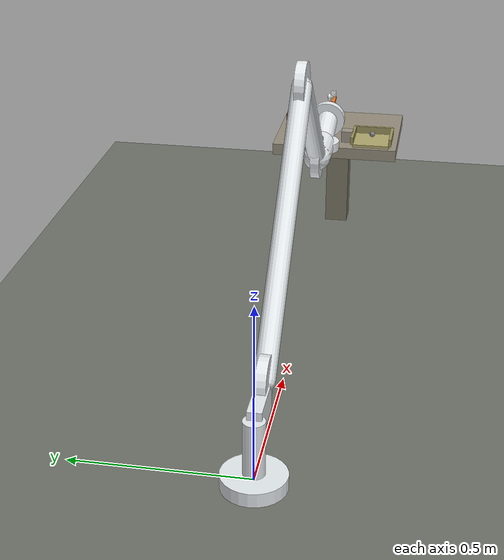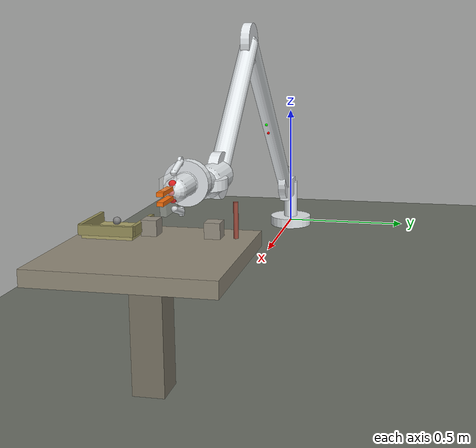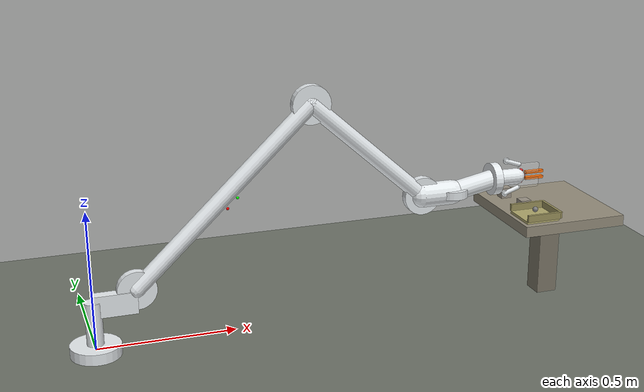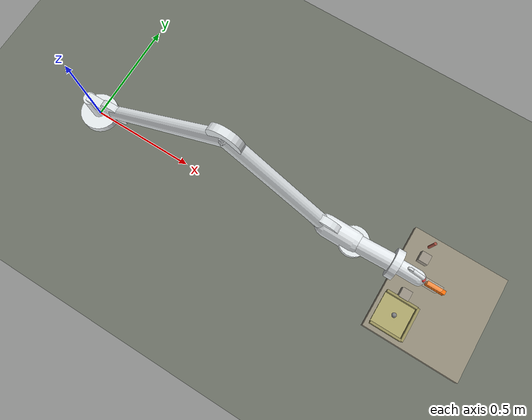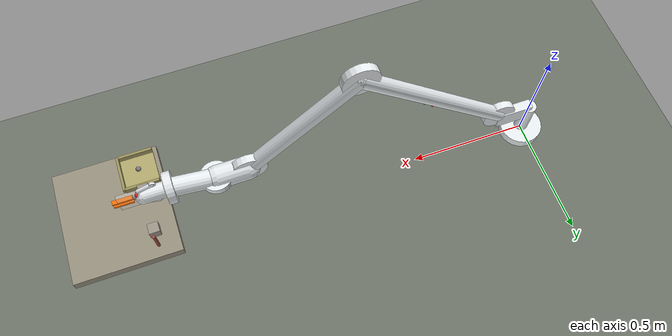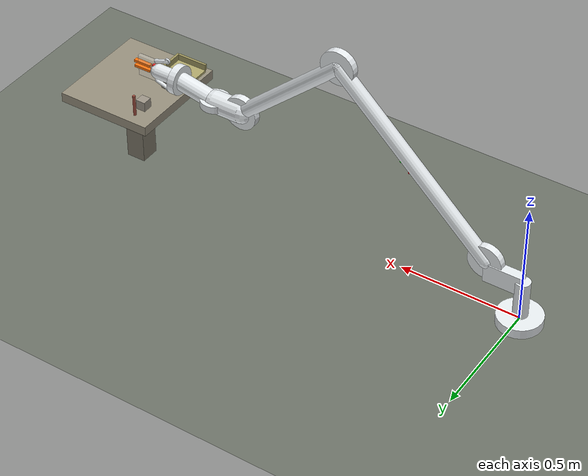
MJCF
<mujoco model="underwater_sampling_l3">
  <include file="_base.xml"/>

  <worldbody>
    <!-- A 岩：立柱旁边那块 -->
    <body name="object" pos="1.60 0.10 0.37">
      <freejoint name="object_joint"/>
      <geom name="object_geom" type="box" size="0.02 0.02 0.02" mass="0.1"
            solref="0.002 1" rgba="0.60 0.57 0.52 1" friction="0.7 0.02 0.001"/>
    </body>

    <!-- B 岩：空地上那块（干扰项） -->
    <body name="object2" pos="1.60 -0.06 0.37">
      <freejoint name="object2_joint"/>
      <geom name="object2_geom" type="box" size="0.02 0.02 0.02" mass="0.1"
            solref="0.002 1" rgba="0.60 0.57 0.52 1" friction="0.7 0.02 0.001"/>
    </body>

    <!-- 参照物立柱（静态，纯视觉+可碰撞；给语言指称一个锚点） -->
    <body name="marker_post" pos="1.60 0.155 0.35">
      <geom name="marker_post_geom" type="cylinder" size="0.006 0.045" pos="0 0 0.045"
            rgba="0.62 0.30 0.24 1" friction="0.7 0.02 0.001"/>
    </body>

    <!-- 托盘几何与 L1 一致（内净 12cm、三面壁 2.5cm、软底、近侧开口）：补上近侧壁 link6_mount 就会啃壁。 -->
    <body name="place_target" pos="1.60 -0.15 0.35">
      <geom name="tray_floor" type="box" size="0.065 0.065 0.005" pos="0 0 0.005"
            solref="0.02 1" rgba="0.68 0.65 0.42 1" friction="0.9 0.02 0.001"/>
      <geom name="tray_wall_xp" type="box" size="0.005 0.07 0.0125" pos="0.0675 0 0.0225"
            rgba="0.60 0.57 0.36 1" friction="0.9 0.02 0.001"/>
            rgba="0.60 0.57 0.36 1" friction="0.9 0.02 0.001"/>
      <geom name="tray_wall_yp" type="box" size="0.065 0.005 0.0125" pos="0 0.0675 0.0225"
            rgba="0.60 0.57 0.36 1" friction="0.9 0.02 0.001"/>
      <geom name="tray_wall_yn" type="box" size="0.065 0.005 0.0125" pos="0 -0.0675 0.0225"
            rgba="0.60 0.57 0.36 1" friction="0.9 0.02 0.001"/>
      <site name="place_target_site" pos="0 0 0.030" size="0.01"/>
    </body>
  </worldbody>

  <keyframe>
    <!-- arm8 + A 岩 7 + B 岩 7（freejoint 按声明顺序） -->
    <key name="home" qpos="0.0374 -0.5858 -1.4717 0.3109 -0.1223 -1.5642 0.22 0.22 1.60 0.10 0.37 1 0 0 0 1.60 -0.06 0.37 1 0 0 0"
         ctrl="0.0374 -0.5858 -1.4717 0.3109 -0.1223 -1.5642 0.22 0.22"/>
  </keyframe>
</mujoco>

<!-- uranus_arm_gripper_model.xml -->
<mujoco model="uranus_arm_gripper_model_a">
  <compiler angle="radian"/>

  <!-- Model A: complete kinematic/dynamic structure with STL meshes replaced
       by primitive geometry. Gripper simplified to a direct-drive 2-jaw design. -->
  <option timestep="0.001" solver="Newton" iterations="100" tolerance="1e-12"
          cone="elliptic" impratio="10">
    <flag gravity="enable"/>
  </option>

  <worldbody>
    <camera name="top_view" pos="0 0 0.8" xyaxes="0 -1 0  0 0 1" fovy="50"/>
    <body name="base_link" pos="0 0 0">
      <inertial pos="0.00022653 -8.6509e-12 0.017246" quat="1 0 0 0" mass="2.7072" diaginertia="0.0076487 0.0076027 0.014205"/>
      <geom name="base_link_primitive" type="cylinder" size="0.09 0.02" rgba="0.89804 0.91765 0.92941 1"/>

      <body name="link1" pos="0 0 0.021514">
        <inertial pos="0.045493 -0.00030184 0.10957" quat="0.509921 0.489886 0.489726 0.51006" mass="22" diaginertia="0.1916 0.161437 0.138963"/>
        <joint name="joint1" type="hinge" limited="true" range="-3.14 3.14" damping="3000" armature="1" frictionloss="50" pos="0 0 0" axis="0 0 1"/>
        <geom name="link1_hub" type="cylinder" pos="0 0 0.06545" size="0.03 0.09089" rgba="0.89804 0.91765 0.92941 1"/>
        <geom name="link1_beam" type="box" size="0.076525 0.02 0.04" pos="0.076525 0 0.14" rgba="0.89804 0.91765 0.92941 1"/>

        <body name="link2" pos="0.15305 0 0.18178" quat="0.70710678 0.70710678 0 0">
          <inertial pos="0.30213 0.30426 6.3402e-05" quat="0.647239 0.284761 -0.647233 0.284749" mass="24" diaginertia="1.403 1.38077 0.10333"/>
          <joint name="joint2" type="hinge" limited="true" range="-1.527 -0.108" ref="-0.812224" damping="2000" armature="1" frictionloss="80" pos="0 0 0" axis="0 0 1"/>
          <geom name="link2_hub" type="cylinder" size="0.07 0.015" rgba="0.89804 0.91765 0.92941 1"/>
          <geom name="link2_beam" type="capsule" fromto="0 0 0 0.63529 0.60209 0" size="0.03" rgba="0.89804 0.91765 0.92941 1"/>

          <body name="link3" pos="0.63529 0.60209 0">
            <inertial pos="0.24045 -0.15902 0.00044845" quat="0.283173 0.64737 -0.285062 0.647661" mass="13" diaginertia="0.29 0.280416 0.0395839"/>
            <joint name="joint3" type="hinge" limited="true" range="-2.857 -0.164" ref="-1.485888" damping="1500" armature="1" frictionloss="50" pos="0 0 0" axis="0 0 1"/>
            <geom name="link3_hub" type="cylinder" size="0.07 0.015" rgba="0.89804 0.91765 0.92941 1"/>
            <geom name="link3_beam" type="capsule" fromto="0 0 0 0.42294 -0.37646 -0.0022318" size="0.03" rgba="0.89804 0.91765 0.92941 1"/>

            <body name="link4" pos="0.42294 -0.37646 -0.0022318">
              <inertial pos="0.052755 0.00053808 0.00076395" quat="0.500656 0.499526 0.500109 0.499708" mass="9" diaginertia="0.0464 0.0441 0.0169"/>
              <joint name="joint4" type="hinge" ref="0.726678" damping="1500" armature="1" frictionloss="20" pos="0 0 0" axis="0 0 1" limited="true" range="-2.0 2.0"/>
              <geom name="link4_hub" type="cylinder" size="0.07 0.015" rgba="0.89804 0.91765 0.92941 1"/>
              <geom name="link4_beam" type="capsule" fromto="0 0 0 0.12065 -7.62e-05 0" size="0.045" rgba="0.89804 0.91765 0.92941 1"/>

              <body name="link5" pos="0.12065 -7.62e-05 0" quat="0.499998 0.5 0.5 -0.500002">
                <inertial pos="0.0007351 0.093393 0.00070242" quat="0.526825 0.464754 0.477704 0.527502" mass="5.2" diaginertia="0.020302 0.015217 0.013781"/>
                <joint type="hinge" limited="true" range="-1.5708 1.5708" damping="800" armature="1" frictionloss="15" name="joint5" pos="0 0 0" axis="0 0 -1"/>
                <geom name="link5_hub" type="cylinder" size="0.06 0.015" rgba="0.89804 0.91765 0.92941 1"/>
                <geom name="link5_beam" type="capsule" fromto="0 0 0 0 0.168 -0.033659" size="0.036" rgba="0.89804 0.91765 0.92941 1"/>

                <body name="link6" pos="0 0.168 -0.033659" quat="-2.59734e-06 -2.59735e-06 0.707108 0.707105">
                  <camera name="wrist_cam" pos="0 0.1 0.05" xyaxes="1 0 0 0 -1 0" fovy="60"/>
                  <inertial pos="-6.1362e-05 -1.137e-05 0.0050252" quat="0.499873 0.500366 -0.499617 0.500144" mass="1.8289" diaginertia="0.0022148 0.0019893 0.0014508"/>
                  <joint name="joint6" type="hinge" limited="true" range="-3.14 3.14" damping="300" armature="0.1" frictionloss="5" pos="0 0 0" axis="0 0 1"/>
                  <geom name="link6_hub" type="cylinder" size="0.06 0.015" rgba="0.89804 0.91765 0.92941 1"/>
                  <geom name="link6_mount" type="capsule" fromto="0 0 0 0 0 0.096835" size="0.03" rgba="0.89804 0.91765 0.92941 1"/>

                  <body name="tcp_link" pos="0 0 0.105">
                    <geom type="capsule" fromto="0 0 -0.02 0 0 0.02" size="0.008" rgba="1 0.2 0.2 0.5" contype="0" conaffinity="0"/>
                  </body>

                  <body name="jaw1.1" pos="0 -0.063665 0.051257" quat="-0.707105 0 0.707108 0">
                    <inertial pos="0.0113615 0.00520096 -1.75914e-05" quat="0.409182 0.409474 0.576807 0.576364" mass="0.141315" diaginertia="6.71236e-05 3.92491e-05 3.46505e-05"/>
                    <joint name="jaw1.1" type="hinge" damping="2" armature="0.01" pos="0 0 0" axis="0 0 -1" limited="true" range="-0.25 0.35"/>
                    <geom name="jaw1_upper_pin" type="cylinder" size="0.012 0.004" rgba="0.898039 0.917647 0.929412 1" contype="0" conaffinity="0"/>
                    <geom name="jaw1_upper_link" type="capsule" fromto="0 0 0 0.054095 0.018434 0" size="0.008" rgba="0.898039 0.917647 0.929412 1" contype="0" conaffinity="0"/>

                    <body name="jaw1.1.1" pos="0.054095 0.018434 0" quat="0 -1 0 0">
                      <inertial pos="0.0349789 -0.0215957 6.0096e-09" quat="0.553511 0.553511 0.440029 0.440029" mass="0.610989" diaginertia="0.000555616 0.000469289 0.000163674"/>
                      <geom name="jaw1_pad_primitive" type="box" pos="0.04 -0.017 0" size="0.04 0.017 0.008" rgba="1 1 1 0.25" contype="0" conaffinity="0"/>
                      <!-- 齿面改成橙色并去掉透明：原来 rgba 的 alpha=0（完全透明），
                           遥操作时人根本看不见哪两片在夹东西（看到的大白块是旁边不参与碰撞的装饰垫）。 -->
                      <geom name="jaw1_tooth_col" type="box" pos="0.0635 -0.0337 -0.00003" size="0.0364 0.0051 0.008" condim="4" friction="10 0.02 0.001" solref="0.002 1" rgba="1 0.45 0.05 1"/>
                      <site name="hole_site_3" pos="0.00508 -0.027152 0" size="0.001" rgba="1 0 0 1"/>
                      <site name="jaw1_a" pos="0.0075 -0.027 0" size="0.01" rgba="1 0 0 1"/>
                    </body>
                  </body>

                  <body name="jaw2.1" pos="0 0.063665 0.051257" quat="0.707105 0 -0.707108 0">
                    <inertial pos="0.0113614 -0.00520085 1.75948e-05" quat="0.576812 0.576359 0.409177 0.409479" mass="0.141315" diaginertia="6.71236e-05 3.92491e-05 3.46505e-05"/>
                    <joint name="jaw2.1" type="hinge" damping="2" armature="0.01" pos="0 0 0" axis="0 0 1" limited="true" range="-0.25 0.35"/>
                    <geom name="jaw2_upper_pin" type="cylinder" size="0.012 0.004" rgba="0.898039 0.917647 0.929412 1" contype="0" conaffinity="0"/>
                    <geom name="jaw2_upper_link" type="capsule" fromto="0 0 0 0.054095 -0.018434 0" size="0.008" rgba="0.898039 0.917647 0.929412 1" contype="0" conaffinity="0"/>

                    <body name="jaw2.1.1" pos="0.054095 -0.018434 0" quat="0 -1 0 0">
                      <inertial pos="0.0378307 0.0233564 -6.41901e-09" quat="0.440029 0.440029 0.553511 0.553511" mass="0.56493" diaginertia="0.000545939 0.000468282 0.000153997"/>
                      <geom name="jaw2_pad_primitive" type="box" pos="0.04 0.017 0" size="0.04 0.017 0.008" rgba="1 1 1 0.25" contype="0" conaffinity="0"/>
                      <geom name="jaw2_tooth_col" type="box" pos="0.0635 0.0337 -0.00003" size="0.0364 0.0051 0.008" condim="4" friction="10 0.02 0.001" solref="0.002 1" rgba="1 0.45 0.05 1"/>
                      <site name="hole_site_4" pos="0.00508 0.027152 0" size="0.001" rgba="1 0 0 1"/>
                      <site name="jaw2_a" pos="0.0075 0.027 0" size="0.01" rgba="1 0 0 1"/>
                    </body>
                  </body>
                </body>
              </body>
            </body>
          </body>

          <site name="hole_site_1" pos="0.33041 0.25666 0" size="0.005" rgba="1 0 0 1"/>
          <site name="hole_site_2" pos="0.36645 0.29246 0" size="0.005" rgba="0 1 0 1"/>
        </body>
      </body>
    </body>
  </worldbody>

  <contact>
    <exclude body1="base_link" body2="link1"/>
    <exclude body1="link2" body2="link3"/>
    <exclude body1="link3" body2="link4"/>
    <exclude body1="link4" body2="link5"/>
    <exclude body1="link5" body2="link6"/>
    <exclude body1="link6" body2="jaw1.1"/>
    <exclude body1="link6" body2="jaw2.1"/>
    <exclude body1="jaw1.1.1" body2="jaw1.1"/>
    <exclude body1="jaw2.1.1" body2="jaw2.1"/>
  </contact>

  <actuator>
    <position name="joint1_act" joint="joint1" kp="450000" kv="2750" ctrlrange="-3.14 3.14"/>
    <position name="joint2_act" joint="joint2" kp="450000" kv="2750" ctrlrange="-1.527 -0.108"/>
    <position name="joint3_act" joint="joint3" kp="450000" kv="2750" ctrlrange="-2.857 -0.164"/>
    <position name="joint4_act" joint="joint4" kp="300000" kv="1100" ctrlrange="-2.18 1.78"/>
    <position name="joint5_act" joint="joint5" kp="240000" kv="825" ctrlrange="-1.5708 1.5708"/>
    <position name="joint6_act" joint="joint6" kp="90000" kv="550" ctrlrange="-3.14 3.14"/>
    <!-- Gripper: 2-jaw direct-drive position control (the original tendon + 4-bar
         linkage sags open at horizontal poses, so it was simplified). -->
    <position name="jaw1.1_act" joint="jaw1.1" kp="3000" kv="50" ctrlrange="-0.25 0.35"/>
    <position name="jaw2.1_act" joint="jaw2.1" kp="3000" kv="50" ctrlrange="-0.25 0.35"/>
  </actuator>

  <sensor>
    <jointpos name="gripper_position" joint="jaw1.1"/>
  </sensor>

  <!-- NOTE: no built-in "home" keyframe here; each scene (scene_*.xml) defines its
       own keyframe to keep qpos length matched (reach vs grasp freejoint). -->
</mujoco>

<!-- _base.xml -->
<mujoco model="underwater_sampling_base">
  <compiler angle="radian"/>
  <option timestep="0.002" integrator="implicitfast" cone="elliptic" impratio="10"/>

  <visual>
    <!-- 离屏渲染缓冲：要 >= 显示窗口尺寸，否则 mujoco.Renderer 直接报错 -->
    <global offwidth="1280" offheight="800"/>
    <headlight ambient="0.45 0.45 0.45" diffuse="0.55 0.55 0.55" specular="0.1 0.1 0.1"/>
    <quality shadowsize="2048"/>
    <map znear="0.02" zfar="30"/>
  </visual>

  <worldbody>
    <!-- 海床：比抓取场景的地面暗、低饱和，给"低对比度"留出余量 -->
    <geom name="floor" type="plane" size="4 4 0.05" pos="0 0 -0.05" rgba="0.42 0.44 0.40 1"/>
    <light pos="3 3 4" dir="-3 -3 -4" diffuse="0.70 0.70 0.68"/>

    <!-- 沉积物工作台（等价于抓取场景里的"桌面"） -->
    <body name="seabed" pos="1.72 -0.02 0">
      <geom name="seabed_top" type="box" size="0.20 0.22 0.02" pos="0 0 0.33"
            rgba="0.58 0.55 0.48 1" friction="0.7 0.02 0.001"/>
      <geom name="seabed_pedestal" type="box" size="0.04 0.04 0.165" pos="0 0 0.165"
            rgba="0.48 0.46 0.40 1" friction="0.7 0.02 0.001"/>
    </body>

    <!-- 俯视/侧视相机（策略输入视角） -->
    <camera name="grasp_cam" pos="1.60 -1.0 1.0" xyaxes="1 0 0  0 0.5 0.866" fovy="50"/>
  </worldbody>

  <!-- 相对路径按**主文件**（各级场景，同在 scenes/ 下）所在目录解析，所以是往上两级到 WYSD/ -->
  <include file="../../Lerobot-Uranus-VLA-Demo/asset/uranus/uranus_arm_gripper_model.xml"/>
</mujoco>
